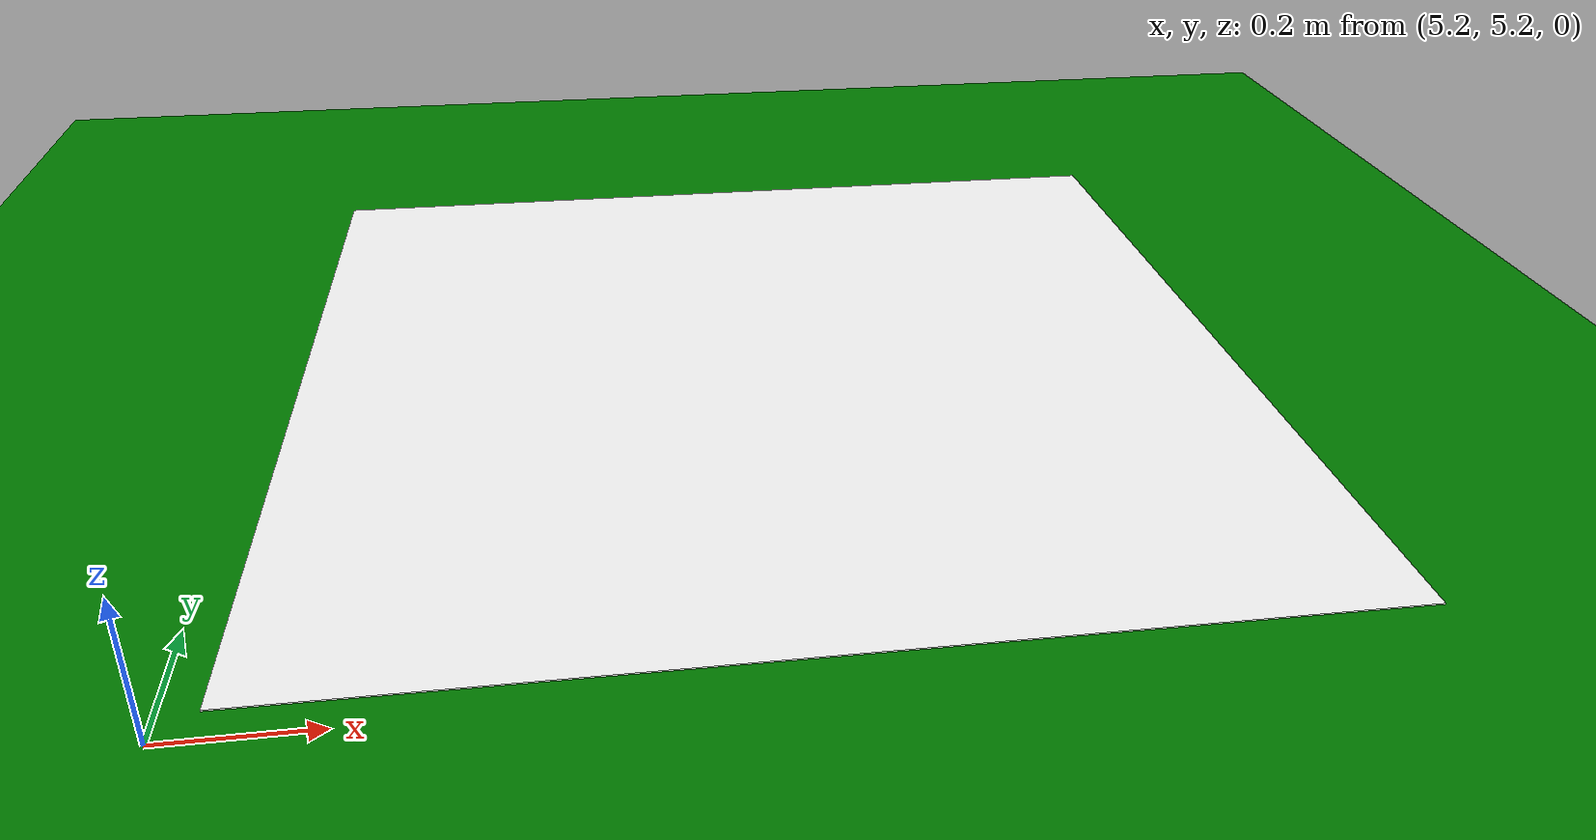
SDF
<sdf version="1.9">
  <world name="aruco">
    <physics type="ode">
      <max_step_size>0.004</max_step_size>
      <real_time_factor>1.0</real_time_factor>
      <real_time_update_rate>250</real_time_update_rate>
    </physics>
    <plugin name="gz::sim::systems::Physics" filename="gz-sim-physics-system"/>
    <plugin name="gz::sim::systems::UserCommands" filename="gz-sim-user-commands-system"/>
    <plugin name="gz::sim::systems::SceneBroadcaster" filename="gz-sim-scene-broadcaster-system"/>
    <plugin name="gz::sim::systems::Contact" filename="gz-sim-contact-system"/>
    <plugin name="gz::sim::systems::Imu" filename="gz-sim-imu-system"/>
    <plugin name="gz::sim::systems::AirPressure" filename="gz-sim-air-pressure-system"/>
    <plugin name="gz::sim::systems::ApplyLinkWrench" filename="gz-sim-apply-link-wrench-system"/>
    <plugin name="gz::sim::systems::NavSat" filename="gz-sim-navsat-system"/>
    <plugin name="gz::sim::systems::Sensors" filename="gz-sim-sensors-system">
      <render_engine>ogre2</render_engine>
    </plugin>
    <gui fullscreen="false">
      <plugin name="3D View" filename="GzScene3D">
        <gz-gui>
          <title>3D View</title>
          <property type="bool" key="showTitleBar">0</property>
          <property type="string" key="state">docked</property>
        </gz-gui>
        <engine>ogre2</engine>
        <scene>scene</scene>
        <ambient_light>0.5984631152222222 0.5984631152222222 0.5984631152222222</ambient_light>
        <background_color>0.8984631152222222 0.8984631152222222 0.8984631152222222</background_color>
        <camera_pose>-6 0 6 0 0.5 0</camera_pose>
      </plugin>
      <plugin name="World control" filename="WorldControl">
        <gz-gui>
          <title>World control</title>
          <property type="bool" key="showTitleBar">0</property>
          <property type="bool" key="resizable">0</property>
          <property type="double" key="height">72</property>
          <property type="double" key="width">121</property>
          <property type="double" key="z">1</property>
          <property type="string" key="state">floating</property>
          <anchors target="3D View">
            <line own="left" target="left"/>
            <line own="bottom" target="bottom"/>
          </anchors>
        </gz-gui>
        <play_pause>1</play_pause>
        <step>1</step>
        <start_paused>1</start_paused>
      </plugin>
      <plugin name="World stats" filename="WorldStats">
        <gz-gui>
          <title>World stats</title>
          <property type="bool" key="showTitleBar">0</property>
          <property type="bool" key="resizable">0</property>
          <property type="double" key="height">110</property>
          <property type="double" key="width">290</property>
          <property type="double" key="z">1</property>
          <property type="string" key="state">floating</property>
          <anchors target="3D View">
            <line own="right" target="right"/>
            <line own="bottom" target="bottom"/>
          </anchors>
        </gz-gui>
        <sim_time>1</sim_time>
        <real_time>1</real_time>
        <real_time_factor>1</real_time_factor>
        <iterations>1</iterations>
      </plugin>
      <plugin name="Entity tree" filename="EntityTree"/>
    </gui>
    <gravity>0 0 -9.8</gravity>
    <magnetic_field>6e-06 2.3e-05 -4.2e-05</magnetic_field>
    <atmosphere type="adiabatic"/>
    <scene>
      <grid>false</grid>
      <ambient>0.4 0.4 0.4 1</ambient>
      <background>0.7 0.7 0.7 1</background>
      <shadows>true</shadows>
    </scene>
    <model name="ground_plane">
      <static>true</static>
      <link name="link">
        <collision name="collision">
          <geometry>
            <plane>
              <normal>0 0 1</normal>
              <size>1 1</size>
            </plane>
          </geometry>
          <surface>
            <friction>
              <ode/>
            </friction>
            <bounce/>
            <contact/>
          </surface>
        </collision>
        <visual name="visual">
          <geometry>
            <plane>
              <normal>0 0 1</normal>
              <size>100 100</size>
            </plane>
          </geometry>
          <material>
            <ambient>0 0.5 0 1</ambient>
            <diffuse>0 0.5 0 1</diffuse>
            <specular>0 0.5 0 1</specular>
          </material>
        </visual>
        <pose>0 0 0 0 -0 0</pose>
        <inertial>
          <pose>0 0 0 0 -0 0</pose>
          <mass>1</mass>
          <inertia>
            <ixx>1</ixx>
            <ixy>0</ixy>
            <ixz>0</ixz>
            <iyy>1</iyy>
            <iyz>0</iyz>
            <izz>1</izz>
          </inertia>
        </inertial>
        <enable_wind>false</enable_wind>
      </link>
      <pose>0 0 0 0 -0 0</pose>
      <self_collide>false</self_collide>
    </model>
    <model name="aruco_marker">
      <!-- Include the ArUco marker model -->
      <!-- Adjust the URI to point to the correct model file -->
      <include>
        <uri>model://land_pad</uri>
        <pose>6 6 0 0 0 0</pose>
      </include>
    </model>
    <light name="sunUTC" type="directional">
      <pose>0 0 500 0 -0 0</pose>
      <cast_shadows>true</cast_shadows>
      <intensity>1</intensity>
      <direction>0.001 0.625 -0.78</direction>
      <diffuse>0.904 0.904 0.904 1</diffuse>
      <specular>0.271 0.271 0.271 1</specular>
      <attenuation>
        <range>2000</range>
        <linear>0</linear>
        <constant>1</constant>
        <quadratic>0</quadratic>
      </attenuation>
      <spot>
        <inner_angle>0</inner_angle>
        <outer_angle>0</outer_angle>
        <falloff>0</falloff>
      </spot>
    </light>
    <spherical_coordinates>
      <surface_model>EARTH_WGS84</surface_model>
      <world_frame_orientation>ENU</world_frame_orientation>
      <latitude_deg>47.397971057728974</latitude_deg>
      <longitude_deg> 8.546163739800146</longitude_deg>
      <altitude>0</altitude>
    </spherical_coordinates>
  </world>
</sdf>

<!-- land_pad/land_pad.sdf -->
<sdf version="1.9">
  <model name="land_pad">
    <pose>0.0 0.0 0.1 0 0 0</pose>
    <link name="link">
        <inertial>
        <pose>0 0 0 0 0 0</pose>
        <mass>10.0</mass>
        <inertia>
          <ixx>0.01</ixx>
          <ixy>0</ixy>
          <ixz>0</ixz>
          <iyy>0.01</iyy>
          <iyz>0</iyz>
          <izz>0.01</izz>
        </inertia>
      </inertial>
      <kinematic>true</kinematic>
      <collision name="collision">
        <geometry>
          <box>
            <size>1.5 1.5 0.001</size>
          </box>
        </geometry>
        <surface>
          <friction>
            <ode>
              <mu>1.0</mu>
              <mu2>1.0</mu2>
              <fdir1>1 0 0</fdir1>
            </ode>
          </friction>
          <contact>
            <ode>
              <kp>1e+12</kp>
              <kd>1</kd>
              <max_vel>10</max_vel>
              <min_depth>0.003</min_depth>
            </ode>
          </contact>
        </surface>
      </collision>
      <visual name="visual">
        <geometry>
          <box>
            <size>1.5 1.5 0.002</size>
          </box>
        </geometry>
        <!-- Aruco marker as the land pad structure -->
        <material>
          <pbr>
              <metal>
                  <albedo_map>model://land_pad/materials/textures/e-aruco1.png</albedo_map>
              </metal>
                  </pbr>
          <script>
              <uri>model://land_pad/materials/scripts</uri>
              <uri>model://land_pad/materials/textures</uri>
              <name>ArucoVisualMarker0/Marker</name>
          </script>
          <ambient>1 1 1 1</ambient>
          <diffuse>1 1 1 1</diffuse>
          <specular>1 1 1 1</specular>
        </material>
      </visual>
    </link>
  </model>
</sdf>
